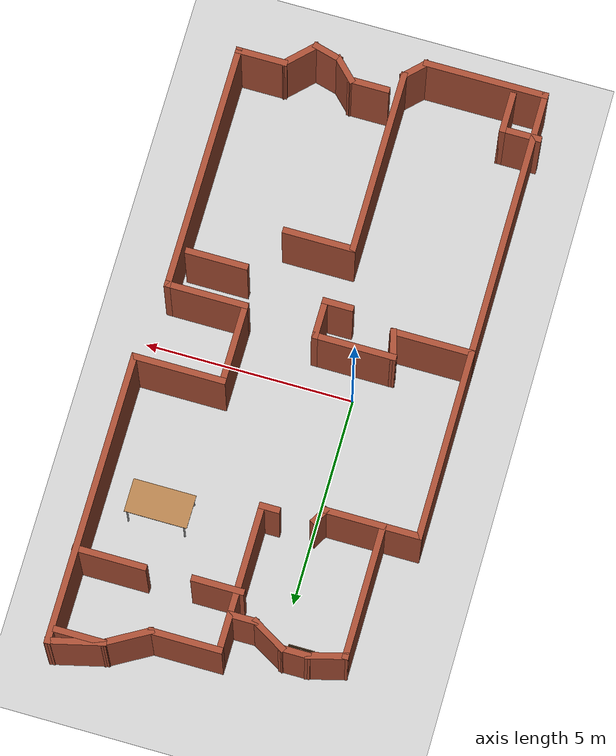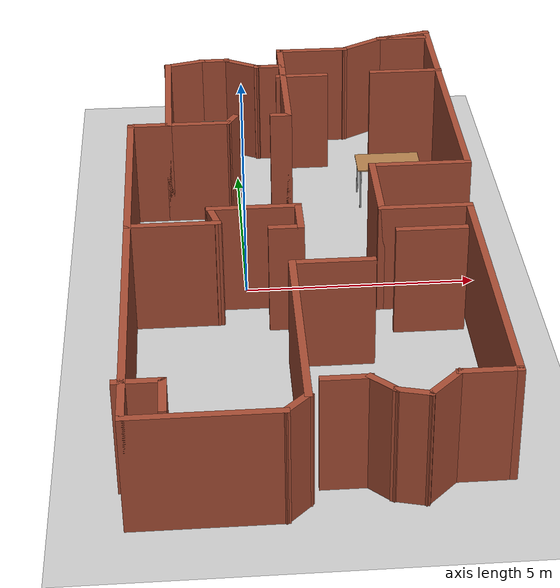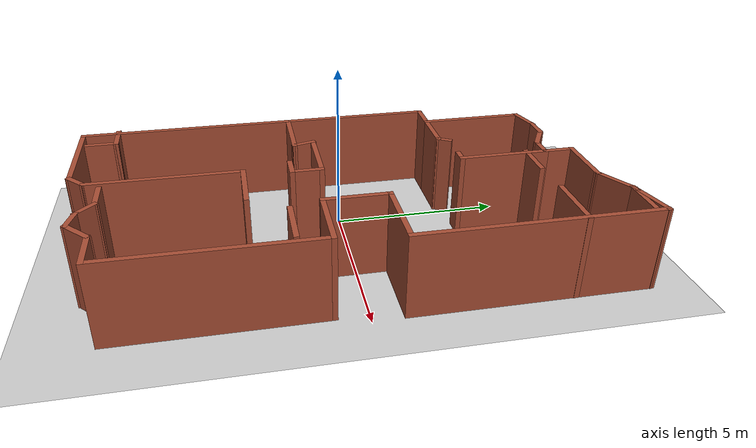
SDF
<sdf version="1.6">
 <world name="default">
  <model name="ground_plane">
   <static>1</static>
   <link name="link">
    <collision name="collision">
     <geometry><plane><normal>0 0 1</normal><size>100 100</size></plane></geometry>
     <surface>
      <contact><collide_bitmask>65535</collide_bitmask></contact>
      <friction><ode><mu>100</mu><mu2>50</mu2></ode></friction>
     </surface>
    </collision>
    <visual name="visual">
     <cast_shadows>0</cast_shadows>
     <geometry><plane><normal>0 0 1</normal><size>100 100</size></plane></geometry>
     <material>
      <script><uri>file://media/materials/scripts/gazebo.material</uri><name>Gazebo/Grey</name></script>
     </material>
    </visual>
   </link>
  </model>
  <model name="map_51">
   <pose>1.18877 0.058114 0 0 -0 0</pose>
   <link name="Wall_0">
    <collision name="Wall_0_Collision">
     <geometry><box><size>1.25 0.15 2.5</size></box></geometry>
     <pose>0 0 1.25 0 -0 0</pose>
    </collision>
    <visual name="Wall_0_Visual">
     <pose>0 0 1.25 0 -0 0</pose>
     <geometry><box><size>1.25 0.15 2.5</size></box></geometry>
     <material>
      <script><uri>file://media/materials/scripts/gazebo.material</uri><name>Gazebo/Bricks</name></script>
      <ambient>1 1 1 1</ambient>
     </material>
     <meta><layer>0</layer></meta>
    </visual>
    <pose>3.07724 7.43168 0 0 -0 3.14159</pose>
   </link>
   <link name="Wall_1">
    <collision name="Wall_1_Collision">
     <geometry><box><size>1.25 0.15 2.5</size></box></geometry>
     <pose>0 0 1.25 0 -0 0</pose>
    </collision>
    <visual name="Wall_1_Visual">
     <pose>0 0 1.25 0 -0 0</pose>
     <geometry><box><size>1.25 0.15 2.5</size></box></geometry>
     <material>
      <script><uri>file://media/materials/scripts/gazebo.material</uri><name>Gazebo/Bricks</name></script>
      <ambient>1 1 1 1</ambient>
     </material>
     <meta><layer>0</layer></meta>
    </visual>
    <pose>2.05092 7.15668 0 0 -0 -2.61799</pose>
   </link>
   <link name="Wall_10">
    <collision name="Wall_10_Collision">
     <geometry><box><size>11 0.15 2.5</size></box></geometry>
     <pose>0 0 1.25 0 -0 0</pose>
    </collision>
    <visual name="Wall_10_Visual">
     <pose>0 0 1.25 0 -0 0</pose>
     <geometry><box><size>11 0.15 2.5</size></box></geometry>
     <material>
      <script><uri>file://media/materials/scripts/gazebo.material</uri><name>Gazebo/Bricks</name></script>
      <ambient>1 1 1 1</ambient>
     </material>
     <meta><layer>0</layer></meta>
    </visual>
    <pose>-3.63255 -2.28832 0 0 -0 -1.5708</pose>
   </link>
   <link name="Wall_12">
    <collision name="Wall_12_Collision">
     <geometry><box><size>3 0.15 2.5</size></box></geometry>
     <pose>0 0 1.25 0 -0 0</pose>
    </collision>
    <visual name="Wall_12_Visual">
     <pose>0 0 1.25 0 -0 0</pose>
     <geometry><box><size>3 0.15 2.5</size></box></geometry>
     <material>
      <script><uri>file://media/materials/scripts/gazebo.material</uri><name>Gazebo/Bricks</name></script>
      <ambient>1 1 1 1</ambient>
     </material>
     <meta><layer>0</layer></meta>
    </visual>
    <pose>-2.20755 -7.71332 0 0 -0 0</pose>
   </link>
   <link name="Wall_13">
    <collision name="Wall_13_Collision">
     <geometry><box><size>0.75 0.15 2.5</size></box></geometry>
     <pose>0 0 1.25 0 -0 0</pose>
    </collision>
    <visual name="Wall_13_Visual">
     <pose>0 0 1.25 0 -0 0</pose>
     <geometry><box><size>0.75 0.15 2.5</size></box></geometry>
     <material>
      <script><uri>file://media/materials/scripts/gazebo.material</uri><name>Gazebo/Bricks</name></script>
      <ambient>1 1 1 1</ambient>
     </material>
     <meta><layer>0</layer></meta>
    </visual>
    <pose>-0.570418 -7.50118 0 0 -0 0.785398</pose>
   </link>
   <link name="Wall_14">
    <collision name="Wall_14_Collision">
     <geometry><box><size>4.5 0.15 2.5</size></box></geometry>
     <pose>0 0 1.25 0 -0 0</pose>
    </collision>
    <visual name="Wall_14_Visual">
     <pose>0 0 1.25 0 -0 0</pose>
     <geometry><box><size>4.5 0.15 2.5</size></box></geometry>
     <material>
      <script><uri>file://media/materials/scripts/gazebo.material</uri><name>Gazebo/Bricks</name></script>
      <ambient>1 1 1 1</ambient>
     </material>
     <meta><layer>0</layer></meta>
    </visual>
    <pose>-0.358286 -5.11405 0 0 -0 1.5708</pose>
   </link>
   <link name="Wall_15">
    <collision name="Wall_15_Collision">
     <geometry><box><size>1.75 0.15 2.5</size></box></geometry>
     <pose>0 0 1.25 0 -0 0</pose>
    </collision>
    <visual name="Wall_15_Visual">
     <pose>0 0 1.25 0 -0 0</pose>
     <geometry><box><size>1.75 0.15 2.5</size></box></geometry>
     <material>
      <script><uri>file://media/materials/scripts/gazebo.material</uri><name>Gazebo/Bricks</name></script>
      <ambient>1 1 1 1</ambient>
     </material>
     <meta><layer>0</layer></meta>
    </visual>
    <pose>0.441714 -2.93905 0 0 -0 0</pose>
   </link>
   <link name="Wall_18">
    <collision name="Wall_18_Collision">
     <geometry><box><size>1 0.15 2.5</size></box></geometry>
     <pose>0 0 1.25 0 -0 0</pose>
    </collision>
    <visual name="Wall_18_Visual">
     <pose>0 0 1.25 0 -0 0</pose>
     <geometry><box><size>1 0.15 2.5</size></box></geometry>
     <material>
      <script><uri>file://media/materials/scripts/gazebo.material</uri><name>Gazebo/Bricks</name></script>
      <ambient>1 1 1 1</ambient>
     </material>
     <meta><layer>0</layer></meta>
    </visual>
    <pose>-3.33111 -6.6582 0 0 -0 0</pose>
   </link>
   <link name="Wall_19">
    <collision name="Wall_19_Collision">
     <geometry><box><size>1 0.15 2.5</size></box></geometry>
     <pose>0 0 1.25 0 -0 0</pose>
    </collision>
    <visual name="Wall_19_Visual">
     <pose>0 0 1.25 0 -0 0</pose>
     <geometry><box><size>1 0.15 2.5</size></box></geometry>
     <material>
      <script><uri>file://media/materials/scripts/gazebo.material</uri><name>Gazebo/Bricks</name></script>
      <ambient>1 1 1 1</ambient>
     </material>
     <meta><layer>0</layer></meta>
    </visual>
    <pose>-2.90611 -7.0832 0 0 -0 -1.5708</pose>
   </link>
   <link name="Wall_2">
    <collision name="Wall_2_Collision">
     <geometry><box><size>1.75 0.15 2.5</size></box></geometry>
     <pose>0 0 1.25 0 -0 0</pose>
    </collision>
    <visual name="Wall_2_Visual">
     <pose>0 0 1.25 0 -0 0</pose>
     <geometry><box><size>1.75 0.15 2.5</size></box></geometry>
     <material>
      <script><uri>file://media/materials/scripts/gazebo.material</uri><name>Gazebo/Bricks</name></script>
      <ambient>1 1 1 1</ambient>
     </material>
     <meta><layer>0</layer></meta>
    </visual>
    <pose>0.774609 6.88168 0 0 -0 3.14159</pose>
   </link>
   <link name="Wall_21">
    <collision name="Wall_21_Collision">
     <geometry><box><size>1 0.15 2.5</size></box></geometry>
     <pose>0 0 1.25 0 -0 0</pose>
    </collision>
    <visual name="Wall_21_Visual">
     <pose>0 0 1.25 0 -0 0</pose>
     <geometry><box><size>1 0.15 2.5</size></box></geometry>
     <material>
      <script><uri>file://media/materials/scripts/gazebo.material</uri><name>Gazebo/Bricks</name></script>
      <ambient>1 1 1 1</ambient>
     </material>
     <meta><layer>0</layer></meta>
    </visual>
    <pose>0.360564 -6.84279 0 0 -0 0</pose>
   </link>
   <link name="Wall_22">
    <collision name="Wall_22_Collision">
     <geometry><box><size>0.75 0.15 2.5</size></box></geometry>
     <pose>0 0 1.25 0 -0 0</pose>
    </collision>
    <visual name="Wall_22_Visual">
     <pose>0 0 1.25 0 -0 0</pose>
     <geometry><box><size>0.75 0.15 2.5</size></box></geometry>
     <material>
      <script><uri>file://media/materials/scripts/gazebo.material</uri><name>Gazebo/Bricks</name></script>
      <ambient>1 1 1 1</ambient>
     </material>
     <meta><layer>0</layer></meta>
    </visual>
    <pose>0.997696 -7.05492 0 0 -0 -0.785398</pose>
   </link>
   <link name="Wall_23">
    <collision name="Wall_23_Collision">
     <geometry><box><size>0.75 0.15 2.5</size></box></geometry>
     <pose>0 0 1.25 0 -0 0</pose>
    </collision>
    <visual name="Wall_23_Visual">
     <pose>0 0 1.25 0 -0 0</pose>
     <geometry><box><size>0.75 0.15 2.5</size></box></geometry>
     <material>
      <script><uri>file://media/materials/scripts/gazebo.material</uri><name>Gazebo/Bricks</name></script>
      <ambient>1 1 1 1</ambient>
     </material>
     <meta><layer>0</layer></meta>
    </visual>
    <pose>1.49961 -7.3447 0 0 -0 -0.261799</pose>
   </link>
   <link name="Wall_24">
    <collision name="Wall_24_Collision">
     <geometry><box><size>1 0.15 2.5</size></box></geometry>
     <pose>0 0 1.25 0 -0 0</pose>
    </collision>
    <visual name="Wall_24_Visual">
     <pose>0 0 1.25 0 -0 0</pose>
     <geometry><box><size>1 0.15 2.5</size></box></geometry>
     <material>
      <script><uri>file://media/materials/scripts/gazebo.material</uri><name>Gazebo/Bricks</name></script>
      <ambient>1 1 1 1</ambient>
     </material>
     <meta><layer>0</layer></meta>
    </visual>
    <pose>2.0899 -7.12182 0 0 -0 0.785398</pose>
   </link>
   <link name="Wall_25">
    <collision name="Wall_25_Collision">
     <geometry><box><size>1.25 0.15 2.5</size></box></geometry>
     <pose>0 0 1.25 0 -0 0</pose>
    </collision>
    <visual name="Wall_25_Visual">
     <pose>0 0 1.25 0 -0 0</pose>
     <geometry><box><size>1.25 0.15 2.5</size></box></geometry>
     <material>
      <script><uri>file://media/materials/scripts/gazebo.material</uri><name>Gazebo/Bricks</name></script>
      <ambient>1 1 1 1</ambient>
     </material>
     <meta><layer>0</layer></meta>
    </visual>
    <pose>2.94042 -6.8213 0 0 -0 0</pose>
   </link>
   <link name="Wall_26">
    <collision name="Wall_26_Collision">
     <geometry><box><size>6 0.15 2.5</size></box></geometry>
     <pose>0 0 1.25 0 -0 0</pose>
    </collision>
    <visual name="Wall_26_Visual">
     <pose>0 0 1.25 0 -0 0</pose>
     <geometry><box><size>6 0.15 2.5</size></box></geometry>
     <material>
      <script><uri>file://media/materials/scripts/gazebo.material</uri><name>Gazebo/Bricks</name></script>
      <ambient>1 1 1 1</ambient>
     </material>
     <meta><layer>0</layer></meta>
    </visual>
    <pose>3.49042 -3.8963 0 0 -0 1.5708</pose>
   </link>
   <link name="Wall_27">
    <collision name="Wall_27_Collision">
     <geometry><box><size>2 0.15 2.5</size></box></geometry>
     <pose>0 0 1.25 0 -0 0</pose>
    </collision>
    <visual name="Wall_27_Visual">
     <pose>0 0 1.25 0 -0 0</pose>
     <geometry><box><size>2 0.15 2.5</size></box></geometry>
     <material>
      <script><uri>file://media/materials/scripts/gazebo.material</uri><name>Gazebo/Bricks</name></script>
      <ambient>1 1 1 1</ambient>
     </material>
     <meta><layer>0</layer></meta>
    </visual>
    <pose>2.56542 -0.971302 0 0 -0 3.14159</pose>
   </link>
   <link name="Wall_28">
    <collision name="Wall_28_Collision">
     <geometry><box><size>2 0.15 2.5</size></box></geometry>
     <pose>0 0 1.25 0 -0 0</pose>
    </collision>
    <visual name="Wall_28_Visual">
     <pose>0 0 1.25 0 -0 0</pose>
     <geometry><box><size>2 0.15 2.5</size></box></geometry>
     <material>
      <script><uri>file://media/materials/scripts/gazebo.material</uri><name>Gazebo/Bricks</name></script>
      <ambient>1 1 1 1</ambient>
     </material>
     <meta><layer>0</layer></meta>
    </visual>
    <pose>1.64042 -0.046302 0 0 -0 1.5708</pose>
   </link>
   <link name="Wall_29">
    <collision name="Wall_29_Collision">
     <geometry><box><size>2.25 0.15 2.5</size></box></geometry>
     <pose>0 0 1.25 0 -0 0</pose>
    </collision>
    <visual name="Wall_29_Visual">
     <pose>0 0 1.25 0 -0 0</pose>
     <geometry><box><size>2.25 0.15 2.5</size></box></geometry>
     <material>
      <script><uri>file://media/materials/scripts/gazebo.material</uri><name>Gazebo/Bricks</name></script>
      <ambient>1 1 1 1</ambient>
     </material>
     <meta><layer>0</layer></meta>
    </visual>
    <pose>2.69042 0.878698 0 0 -0 0</pose>
   </link>
   <link name="Wall_3">
    <collision name="Wall_3_Collision">
     <geometry><box><size>1 0.15 2.5</size></box></geometry>
     <pose>0 0 1.25 0 -0 0</pose>
    </collision>
    <visual name="Wall_3_Visual">
     <pose>0 0 1.25 0 -0 0</pose>
     <geometry><box><size>1 0.15 2.5</size></box></geometry>
     <material>
      <script><uri>file://media/materials/scripts/gazebo.material</uri><name>Gazebo/Bricks</name></script>
      <ambient>1 1 1 1</ambient>
     </material>
     <meta><layer>0</layer></meta>
    </visual>
    <pose>-0.025391 6.45668 0 0 -0 -1.5708</pose>
   </link>
   <link name="Wall_30">
    <collision name="Wall_30_Collision">
     <geometry><box><size>7 0.15 2.5</size></box></geometry>
     <pose>0 0 1.25 0 -0 0</pose>
    </collision>
    <visual name="Wall_30_Visual">
     <pose>0 0 1.25 0 -0 0</pose>
     <geometry><box><size>7 0.15 2.5</size></box></geometry>
     <material>
      <script><uri>file://media/materials/scripts/gazebo.material</uri><name>Gazebo/Bricks</name></script>
      <ambient>1 1 1 1</ambient>
     </material>
     <meta><layer>0</layer></meta>
    </visual>
    <pose>3.74042 4.3037 0 0 -0 1.5708</pose>
   </link>
   <link name="Wall_31">
    <collision name="Wall_31_Collision">
     <geometry><box><size>1.39902 0.15 2.5</size></box></geometry>
     <pose>0 0 1.25 0 -0 0</pose>
    </collision>
    <visual name="Wall_31_Visual">
     <pose>0 0 1.25 0 -0 0</pose>
     <geometry><box><size>1.39902 0.15 2.5</size></box></geometry>
     <material>
      <script><uri>file://media/materials/scripts/gazebo.material</uri><name>Gazebo/Bricks</name></script>
      <ambient>1 1 1 1</ambient>
     </material>
     <meta><layer>0</layer></meta>
    </visual>
    <pose>3.13383 7.58019 0 0 -0 -2.90149</pose>
   </link>
   <link name="Wall_34">
    <collision name="Wall_34_Collision">
     <geometry><box><size>1.5 0.15 2.5</size></box></geometry>
     <pose>0 0 1.25 0 -0 0</pose>
    </collision>
    <visual name="Wall_34_Visual">
     <pose>0 0 1.25 0 -0 0</pose>
     <geometry><box><size>1.5 0.15 2.5</size></box></geometry>
     <material>
      <script><uri>file://media/materials/scripts/gazebo.material</uri><name>Gazebo/Bricks</name></script>
      <ambient>1 1 1 1</ambient>
     </material>
     <meta><layer>0</layer></meta>
    </visual>
    <pose>2.57946 -1.85903 0 0 -0 0</pose>
   </link>
   <link name="Wall_36">
    <collision name="Wall_36_Collision">
     <geometry><box><size>2 0.15 2.5</size></box></geometry>
     <pose>0 0 1.25 0 -0 0</pose>
    </collision>
    <visual name="Wall_36_Visual">
     <pose>0 0 1.25 0 -0 0</pose>
     <geometry><box><size>2 0.15 2.5</size></box></geometry>
     <material>
      <script><uri>file://media/materials/scripts/gazebo.material</uri><name>Gazebo/Bricks</name></script>
      <ambient>1 1 1 1</ambient>
     </material>
     <meta><layer>0</layer></meta>
    </visual>
    <pose>-2.70805 -1.30528 0 0 -0 0</pose>
   </link>
   <link name="Wall_37">
    <collision name="Wall_37_Collision">
     <geometry><box><size>0.75 0.15 2.5</size></box></geometry>
     <pose>0 0 1.25 0 -0 0</pose>
    </collision>
    <visual name="Wall_37_Visual">
     <pose>0 0 1.25 0 -0 0</pose>
     <geometry><box><size>0.75 0.15 2.5</size></box></geometry>
     <material>
      <script><uri>file://media/materials/scripts/gazebo.material</uri><name>Gazebo/Bricks</name></script>
      <ambient>1 1 1 1</ambient>
     </material>
     <meta><layer>0</layer></meta>
    </visual>
    <pose>-1.8607 -1.0155 0 0 -0 1.8326</pose>
   </link>
   <link name="Wall_38">
    <collision name="Wall_38_Collision">
     <geometry><box><size>2 0.15 2.5</size></box></geometry>
     <pose>0 0 1.25 0 -0 0</pose>
    </collision>
    <visual name="Wall_38_Visual">
     <pose>0 0 1.25 0 -0 0</pose>
     <geometry><box><size>2 0.15 2.5</size></box></geometry>
     <material>
      <script><uri>file://media/materials/scripts/gazebo.material</uri><name>Gazebo/Bricks</name></script>
      <ambient>1 1 1 1</ambient>
     </material>
     <meta><layer>0</layer></meta>
    </visual>
    <pose>-1.01334 -0.725723 0 0 -0 0</pose>
   </link>
   <link name="Wall_39">
    <collision name="Wall_39_Collision">
     <geometry><box><size>1 0.15 2.5</size></box></geometry>
     <pose>0 0 1.25 0 -0 0</pose>
    </collision>
    <visual name="Wall_39_Visual">
     <pose>0 0 1.25 0 -0 0</pose>
     <geometry><box><size>1 0.15 2.5</size></box></geometry>
     <material>
      <script><uri>file://media/materials/scripts/gazebo.material</uri><name>Gazebo/Bricks</name></script>
      <ambient>1 1 1 1</ambient>
     </material>
     <meta><layer>0</layer></meta>
    </visual>
    <pose>-0.088344 -1.15072 0 0 -0 -1.5708</pose>
   </link>
   <link name="Wall_4">
    <collision name="Wall_4_Collision">
     <geometry><box><size>0.75 0.15 2.5</size></box></geometry>
     <pose>0 0 1.25 0 -0 0</pose>
    </collision>
    <visual name="Wall_4_Visual">
     <pose>0 0 1.25 0 -0 0</pose>
     <geometry><box><size>0.75 0.15 2.5</size></box></geometry>
     <material>
      <script><uri>file://media/materials/scripts/gazebo.material</uri><name>Gazebo/Bricks</name></script>
      <ambient>1 1 1 1</ambient>
     </material>
     <meta><layer>0</layer></meta>
    </visual>
    <pose>-0.325391 6.03168 0 0 -0 3.14159</pose>
   </link>
   <link name="Wall_42">
    <collision name="Wall_42_Collision">
     <geometry><box><size>1.75 0.15 2.5</size></box></geometry>
     <pose>0 0 1.25 0 -0 0</pose>
    </collision>
    <visual name="Wall_42_Visual">
     <pose>0 0 1.25 0 -0 0</pose>
     <geometry><box><size>1.75 0.15 2.5</size></box></geometry>
     <material>
      <script><uri>file://media/materials/scripts/gazebo.material</uri><name>Gazebo/Bricks</name></script>
      <ambient>1 1 1 1</ambient>
     </material>
     <meta><layer>0</layer></meta>
    </visual>
    <pose>2.95029 5.52432 0 0 -0 3.14159</pose>
   </link>
   <link name="Wall_45">
    <collision name="Wall_45_Collision">
     <geometry><box><size>1.25 0.15 2.5</size></box></geometry>
     <pose>0 0 1.25 0 -0 0</pose>
    </collision>
    <visual name="Wall_45_Visual">
     <pose>0 0 1.25 0 -0 0</pose>
     <geometry><box><size>1.25 0.15 2.5</size></box></geometry>
     <material>
      <script><uri>file://media/materials/scripts/gazebo.material</uri><name>Gazebo/Bricks</name></script>
      <ambient>1 1 1 1</ambient>
     </material>
     <meta><layer>0</layer></meta>
    </visual>
    <pose>0.424036 5.46279 0 0 -0 0</pose>
   </link>
   <link name="Wall_47">
    <collision name="Wall_47_Collision">
     <geometry><box><size>2.75 0.15 2.5</size></box></geometry>
     <pose>0 0 1.25 0 -0 0</pose>
    </collision>
    <visual name="Wall_47_Visual">
     <pose>0 0 1.25 0 -0 0</pose>
     <geometry><box><size>2.75 0.15 2.5</size></box></geometry>
     <material>
      <script><uri>file://media/materials/scripts/gazebo.material</uri><name>Gazebo/Bricks</name></script>
      <ambient>1 1 1 1</ambient>
     </material>
     <meta><layer>0</layer></meta>
    </visual>
    <pose>-0.025391 4.73168 0 0 -0 -1.5708</pose>
   </link>
   <link name="Wall_48">
    <collision name="Wall_48_Collision">
     <geometry><box><size>0.5 0.15 2.5</size></box></geometry>
     <pose>0 0 1.25 0 -0 0</pose>
    </collision>
    <visual name="Wall_48_Visual">
     <pose>0 0 1.25 0 -0 0</pose>
     <geometry><box><size>0.5 0.15 2.5</size></box></geometry>
     <material>
      <script><uri>file://media/materials/scripts/gazebo.material</uri><name>Gazebo/Bricks</name></script>
      <ambient>1 1 1 1</ambient>
     </material>
     <meta><layer>0</layer></meta>
    </visual>
    <pose>-0.200391 3.43168 0 0 -0 3.14159</pose>
   </link>
   <link name="Wall_5">
    <collision name="Wall_5_Collision">
     <geometry><box><size>1 0.15 2.5</size></box></geometry>
     <pose>0 0 1.25 0 -0 0</pose>
    </collision>
    <visual name="Wall_5_Visual">
     <pose>0 0 1.25 0 -0 0</pose>
     <geometry><box><size>1 0.15 2.5</size></box></geometry>
     <material>
      <script><uri>file://media/materials/scripts/gazebo.material</uri><name>Gazebo/Bricks</name></script>
      <ambient>1 1 1 1</ambient>
     </material>
     <meta><layer>0</layer></meta>
    </visual>
    <pose>-0.993452 6.24418 0 0 -0 2.61799</pose>
   </link>
   <link name="Wall_50">
    <collision name="Wall_50_Collision">
     <geometry><box><size>1.5 0.15 2.5</size></box></geometry>
     <pose>0 0 1.25 0 -0 0</pose>
    </collision>
    <visual name="Wall_50_Visual">
     <pose>0 0 1.25 0 -0 0</pose>
     <geometry><box><size>1.5 0.15 2.5</size></box></geometry>
     <material>
      <script><uri>file://media/materials/scripts/gazebo.material</uri><name>Gazebo/Bricks</name></script>
      <ambient>1 1 1 1</ambient>
     </material>
     <meta><layer>0</layer></meta>
    </visual>
    <pose>-2.10755 3.13668 0 0 -0 0</pose>
   </link>
   <link name="Wall_51">
    <collision name="Wall_51_Collision">
     <geometry><box><size>0.5 0.15 2.5</size></box></geometry>
     <pose>0 0 1.25 0 -0 0</pose>
    </collision>
    <visual name="Wall_51_Visual">
     <pose>0 0 1.25 0 -0 0</pose>
     <geometry><box><size>0.5 0.15 2.5</size></box></geometry>
     <material>
      <script><uri>file://media/materials/scripts/gazebo.material</uri><name>Gazebo/Bricks</name></script>
      <ambient>1 1 1 1</ambient>
     </material>
     <meta><layer>0</layer></meta>
    </visual>
    <pose>-1.34505 3.28824 0 0 -0 1.0472</pose>
   </link>
   <link name="Wall_53">
    <collision name="Wall_53_Collision">
     <geometry><box><size>0.75 0.15 2.5</size></box></geometry>
     <pose>0 0 1.25 0 -0 0</pose>
    </collision>
    <visual name="Wall_53_Visual">
     <pose>0 0 1.25 0 -0 0</pose>
     <geometry><box><size>0.75 0.15 2.5</size></box></geometry>
     <material>
      <script><uri>file://media/materials/scripts/gazebo.material</uri><name>Gazebo/Bricks</name></script>
      <ambient>1 1 1 1</ambient>
     </material>
     <meta><layer>0</layer></meta>
    </visual>
    <pose>-0.388344 -1.57572 0 0 -0 3.14159</pose>
   </link>
   <link name="Wall_6">
    <collision name="Wall_6_Collision">
     <geometry><box><size>0.75 0.15 2.5</size></box></geometry>
     <pose>0 0 1.25 0 -0 0</pose>
    </collision>
    <visual name="Wall_6_Visual">
     <pose>0 0 1.25 0 -0 0</pose>
     <geometry><box><size>0.75 0.15 2.5</size></box></geometry>
     <material>
      <script><uri>file://media/materials/scripts/gazebo.material</uri><name>Gazebo/Bricks</name></script>
      <ambient>1 1 1 1</ambient>
     </material>
     <meta><layer>0</layer></meta>
    </visual>
    <pose>-1.66151 6.45668 0 0 -0 3.14159</pose>
   </link>
   <link name="Wall_7">
    <collision name="Wall_7_Collision">
     <geometry><box><size>1 0.15 2.5</size></box></geometry>
     <pose>0 0 1.25 0 -0 0</pose>
    </collision>
    <visual name="Wall_7_Visual">
     <pose>0 0 1.25 0 -0 0</pose>
     <geometry><box><size>1 0.15 2.5</size></box></geometry>
     <material>
      <script><uri>file://media/materials/scripts/gazebo.material</uri><name>Gazebo/Bricks</name></script>
      <ambient>1 1 1 1</ambient>
     </material>
     <meta><layer>0</layer></meta>
    </visual>
    <pose>-2.37203 6.34668 0 0 -0 -2.87979</pose>
   </link>
   <link name="Wall_8">
    <collision name="Wall_8_Collision">
     <geometry><box><size>3.25 0.15 2.5</size></box></geometry>
     <pose>0 0 1.25 0 -0 0</pose>
    </collision>
    <visual name="Wall_8_Visual">
     <pose>0 0 1.25 0 -0 0</pose>
     <geometry><box><size>3.25 0.15 2.5</size></box></geometry>
     <material>
      <script><uri>file://media/materials/scripts/gazebo.material</uri><name>Gazebo/Bricks</name></script>
      <ambient>1 1 1 1</ambient>
     </material>
     <meta><layer>0</layer></meta>
    </visual>
    <pose>-2.78255 4.68668 0 0 -0 -1.5708</pose>
   </link>
   <link name="Wall_9">
    <collision name="Wall_9_Collision">
     <geometry><box><size>1 0.15 2.5</size></box></geometry>
     <pose>0 0 1.25 0 -0 0</pose>
    </collision>
    <visual name="Wall_9_Visual">
     <pose>0 0 1.25 0 -0 0</pose>
     <geometry><box><size>1 0.15 2.5</size></box></geometry>
     <material>
      <script><uri>file://media/materials/scripts/gazebo.material</uri><name>Gazebo/Bricks</name></script>
      <ambient>1 1 1 1</ambient>
     </material>
     <meta><layer>0</layer></meta>
    </visual>
    <pose>-3.20755 3.13668 0 0 -0 3.14159</pose>
   </link>
   <static>1</static>
  </model>
  <model name="table">
   <static>1</static>
   <link name="link">
    <collision name="surface">
     <pose>0 0 1 0 -0 0</pose>
     <geometry><box><size>1.5 0.8 0.03</size></box></geometry>
     <surface><friction><ode><mu>0.6</mu><mu2>0.6</mu2></ode></friction></surface>
    </collision>
    <visual name="visual1">
     <pose>0 0 1 0 -0 0</pose>
     <geometry><box><size>1.5 0.8 0.03</size></box></geometry>
     <material>
      <script><uri>file://media/materials/scripts/gazebo.material</uri><name>Gazebo/Wood</name></script>
     </material>
    </visual>
    <collision name="front_left_leg">
     <pose>0.68 0.38 0.5 0 -0 0</pose>
     <geometry><cylinder><radius>0.02</radius><length>1</length></cylinder></geometry>
    </collision>
    <visual name="front_left_leg">
     <pose>0.68 0.38 0.5 0 -0 0</pose>
     <geometry><cylinder><radius>0.02</radius><length>1</length></cylinder></geometry>
     <material>
      <script><uri>file://media/materials/scripts/gazebo.material</uri><name>Gazebo/Grey</name></script>
     </material>
    </visual>
    <collision name="front_right_leg">
     <pose>0.68 -0.38 0.5 0 -0 0</pose>
     <geometry><cylinder><radius>0.02</radius><length>1</length></cylinder></geometry>
    </collision>
    <visual name="front_right_leg">
     <pose>0.68 -0.38 0.5 0 -0 0</pose>
     <geometry><cylinder><radius>0.02</radius><length>1</length></cylinder></geometry>
     <material>
      <script><uri>file://media/materials/scripts/gazebo.material</uri><name>Gazebo/Grey</name></script>
     </material>
    </visual>
    <collision name="back_right_leg">
     <pose>-0.68 -0.38 0.5 0 -0 0</pose>
     <geometry><cylinder><radius>0.02</radius><length>1</length></cylinder></geometry>
    </collision>
    <visual name="back_right_leg">
     <pose>-0.68 -0.38 0.5 0 -0 0</pose>
     <geometry><cylinder><radius>0.02</radius><length>1</length></cylinder></geometry>
     <material>
      <script><uri>file://media/materials/scripts/gazebo.material</uri><name>Gazebo/Grey</name></script>
     </material>
    </visual>
    <collision name="back_left_leg">
     <pose>-0.68 0.38 0.5 0 -0 0</pose>
     <geometry><cylinder><radius>0.02</radius><length>1</length></cylinder></geometry>
    </collision>
    <visual name="back_left_leg">
     <pose>-0.68 0.38 0.5 0 -0 0</pose>
     <geometry><cylinder><radius>0.02</radius><length>1</length></cylinder></geometry>
     <material>
      <script><uri>file://media/materials/scripts/gazebo.material</uri><name>Gazebo/Grey</name></script>
     </material>
    </visual>
   </link>
   <pose>3.52754 3.76111 0 0 -0 0</pose>
  </model>
  <model name="6_Cube_StorageE_1">
   <link name="Wall_0">
    <pose>0 0 0.01 0 -0 0</pose>
    <inertial>
     <mass>1.6201</mass>
     <inertia><ixx>0.0119</ixx><iyy>0.0631</iyy><izz>0.0513</izz><ixy>0</ixy><ixz>0</ixz><iyz>0</iyz></inertia>
    </inertial>
    <collision name="Wall_0_Collision"><geometry><box><size>0.616 0.296 0.02</size></box></geometry></collision>
    <visual name="Wall_0_Visual">
     <geometry><box><size>0.616 0.296 0.02</size></box></geometry>
     <material>
      <script><uri>file://media/materials/scripts/gazebo.material</uri><name>Gazebo/Grey</name></script>
      <ambient>0.105882 0.0509804 0 1</ambient>
     </material>
    </visual>
   </link>
   <joint name="0_2" type="fixed">
    <pose>-0.308 0 0 0 -0 0</pose>
    <parent>Wall_2</parent>
    <child>Wall_0</child>
    <axis>
     <xyz>1 0 0</xyz>
     <use_parent_model_frame>0</use_parent_model_frame>
     <limit><lower>-1e+16</lower><upper>1e+16</upper></limit>
    </axis>
   </joint>
   <joint name="0_12" type="fixed">
    <parent>Wall_12</parent>
    <child>Wall_0</child>
    <axis>
     <xyz>0 0 1</xyz>
     <use_parent_model_frame>0</use_parent_model_frame>
     <limit><lower>-1e+16</lower><upper>1e+16</upper></limit>
    </axis>
   </joint>
   <joint name="0_4" type="fixed">
    <pose>0.308 0 0 0 -0 0</pose>
    <parent>Wall_4</parent>
    <child>Wall_0</child>
    <axis>
     <xyz>1 0 0</xyz>
     <use_parent_model_frame>0</use_parent_model_frame>
     <limit><lower>-1e+16</lower><upper>1e+16</upper></limit>
    </axis>
   </joint>
   <link name="Wall_10">
    <pose>0 0 0.61 0 -0 0</pose>
    <inertial>
     <mass>1.6201</mass>
     <inertia><ixx>0.0119</ixx><iyy>0.0631</iyy><izz>0.0513</izz><ixy>0</ixy><ixz>0</ixz><iyz>0</iyz></inertia>
    </inertial>
    <collision name="Wall_10_Collision"><geometry><box><size>0.616 0.296 0.02</size></box></geometry></collision>
    <visual name="Wall_10_Visual">
     <geometry><box><size>0.616 0.296 0.02</size></box></geometry>
     <material>
      <script><uri>file://media/materials/scripts/gazebo.material</uri><name>Gazebo/Grey</name></script>
      <ambient>0.105882 0.0509804 0 1</ambient>
     </material>
    </visual>
   </link>
   <joint name="10_2" type="fixed">
    <pose>-0.308 0 0 0 -0 0</pose>
    <parent>Wall_2</parent>
    <child>Wall_10</child>
    <axis>
     <xyz>1 0 0</xyz>
     <use_parent_model_frame>0</use_parent_model_frame>
     <limit><lower>-1e+16</lower><upper>1e+16</upper></limit>
    </axis>
   </joint>
   <joint name="10_12" type="fixed">
    <parent>Wall_12</parent>
    <child>Wall_10</child>
    <axis>
     <xyz>0 0 1</xyz>
     <use_parent_model_frame>0</use_parent_model_frame>
     <limit><lower>-1e+16</lower><upper>1e+16</upper></limit>
    </axis>
   </joint>
   <joint name="10_4" type="fixed">
    <pose>0.308 0 0 0 -0 0</pose>
    <parent>Wall_4</parent>
    <child>Wall_10</child>
    <axis>
     <xyz>1 0 0</xyz>
     <use_parent_model_frame>0</use_parent_model_frame>
     <limit><lower>-1e+16</lower><upper>1e+16</upper></limit>
    </axis>
   </joint>
   <link name="Wall_12">
    <pose>0 0 0.4575 0 -0 0</pose>
    <inertial>
     <mass>2.4065</mass>
     <inertia><ixx>0.0177</ixx><iyy>0.1855</iyy><izz>0.168</izz><ixy>0</ixy><ixz>0</ixz><iyz>0</iyz></inertia>
    </inertial>
    <collision name="Wall_12_Collision"><geometry><box><size>0.02 0.296 0.915</size></box></geometry></collision>
    <visual name="Wall_12_Visual">
     <geometry><box><size>0.02 0.296 0.915</size></box></geometry>
     <material>
      <script><uri>file://media/materials/scripts/gazebo.material</uri><name>Gazebo/Grey</name></script>
      <ambient>0.105882 0.0509804 0 1</ambient>
     </material>
    </visual>
   </link>
   <link name="Wall_2">
    <pose>-0.298 0 0.4575 0 -0 0</pose>
    <inertial>
     <mass>2.4065</mass>
     <inertia><ixx>0.0177</ixx><iyy>0.1855</iyy><izz>0.168</izz><ixy>0</ixy><ixz>0</ixz><iyz>0</iyz></inertia>
    </inertial>
    <collision name="Wall_2_Collision"><geometry><box><size>0.02 0.296 0.915</size></box></geometry></collision>
    <visual name="Wall_2_Visual">
     <geometry><box><size>0.02 0.296 0.915</size></box></geometry>
     <material>
      <script><uri>file://media/materials/scripts/gazebo.material</uri><name>Gazebo/Grey</name></script>
      <ambient>0.105882 0.0509804 0 1</ambient>
     </material>
    </visual>
   </link>
   <link name="Wall_4">
    <pose>0.298 0 0.4575 0 -0 0</pose>
    <inertial>
     <mass>2.4065</mass>
     <inertia><ixx>0.0177</ixx><iyy>0.1855</iyy><izz>0.168</izz><ixy>0</ixy><ixz>0</ixz><iyz>0</iyz></inertia>
    </inertial>
    <collision name="Wall_4_Collision"><geometry><box><size>0.02 0.296 0.915</size></box></geometry></collision>
    <visual name="Wall_4_Visual">
     <geometry><box><size>0.02 0.296 0.915</size></box></geometry>
     <material>
      <script><uri>file://media/materials/scripts/gazebo.material</uri><name>Gazebo/Grey</name></script>
      <ambient>0.105882 0.0509804 0 1</ambient>
     </material>
    </visual>
   </link>
   <link name="Wall_6">
    <pose>0 0 0.905 0 -0 0</pose>
    <inertial>
     <mass>1.6201</mass>
     <inertia><ixx>0.0119</ixx><iyy>0.0631</iyy><izz>0.0513</izz><ixy>0</ixy><ixz>0</ixz><iyz>0</iyz></inertia>
    </inertial>
    <collision name="Wall_6_Collision"><geometry><box><size>0.616 0.296 0.02</size></box></geometry></collision>
    <visual name="Wall_6_Visual">
     <geometry><box><size>0.616 0.296 0.02</size></box></geometry>
     <material>
      <script><uri>file://media/materials/scripts/gazebo.material</uri><name>Gazebo/Grey</name></script>
      <ambient>0.105882 0.0509804 0 1</ambient>
     </material>
    </visual>
   </link>
   <joint name="6_2" type="fixed">
    <pose>-0.308 0 0 0 -0 0</pose>
    <parent>Wall_2</parent>
    <child>Wall_6</child>
    <axis>
     <xyz>2 0 0</xyz>
     <use_parent_model_frame>0</use_parent_model_frame>
     <limit><lower>-1e+16</lower><upper>1e+16</upper></limit>
    </axis>
   </joint>
   <joint name="6_12" type="fixed">
    <parent>Wall_12</parent>
    <child>Wall_6</child>
    <axis>
     <xyz>0 0 1</xyz>
     <use_parent_model_frame>0</use_parent_model_frame>
     <limit><lower>-1e+16</lower><upper>1e+16</upper></limit>
    </axis>
   </joint>
   <joint name="6_4" type="fixed">
    <pose>0.308 0 0 0 -0 0</pose>
    <parent>Wall_4</parent>
    <child>Wall_6</child>
    <axis>
     <xyz>1 0 0</xyz>
     <use_parent_model_frame>0</use_parent_model_frame>
     <limit><lower>-1e+16</lower><upper>1e+16</upper></limit>
    </axis>
   </joint>
   <link name="Wall_8">
    <pose>0 0 0.305 0 -0 0</pose>
    <inertial>
     <mass>1.6201</mass>
     <inertia><ixx>0.0119</ixx><iyy>0.0631</iyy><izz>0.0513</izz><ixy>0</ixy><ixz>0</ixz><iyz>0</iyz></inertia>
    </inertial>
    <collision name="Wall_8_Collision"><geometry><box><size>0.616 0.296 0.02</size></box></geometry></collision>
    <visual name="Wall_8_Visual">
     <geometry><box><size>0.616 0.296 0.02</size></box></geometry>
     <material>
      <script><uri>file://media/materials/scripts/gazebo.material</uri><name>Gazebo/Grey</name></script>
      <ambient>0.105882 0.0509804 0 1</ambient>
     </material>
    </visual>
   </link>
   <joint name="8_2" type="fixed">
    <pose>-0.308 0 0 0 -0 0</pose>
    <parent>Wall_2</parent>
    <child>Wall_8</child>
    <axis>
     <xyz>1 0 0</xyz>
     <use_parent_model_frame>0</use_parent_model_frame>
     <limit><lower>-1e+16</lower><upper>1e+16</upper></limit>
    </axis>
   </joint>
   <joint name="8_12" type="fixed">
    <parent>Wall_12</parent>
    <child>Wall_8</child>
    <axis>
     <xyz>0 0 1</xyz>
     <use_parent_model_frame>0</use_parent_model_frame>
     <limit><lower>-1e+16</lower><upper>1e+16</upper></limit>
    </axis>
   </joint>
   <joint name="8_4" type="fixed">
    <pose>0.308 0 0 0 -0 0</pose>
    <parent>Wall_4</parent>
    <child>Wall_8</child>
    <axis>
     <xyz>1 0 0</xyz>
     <use_parent_model_frame>0</use_parent_model_frame>
     <limit><lower>-1e+16</lower><upper>1e+16</upper></limit>
    </axis>
   </joint>
   <static>1</static>
   <pose>-0.51011 6.22978 0 0 -0 0</pose>
  </model>
 </world>
</sdf>
